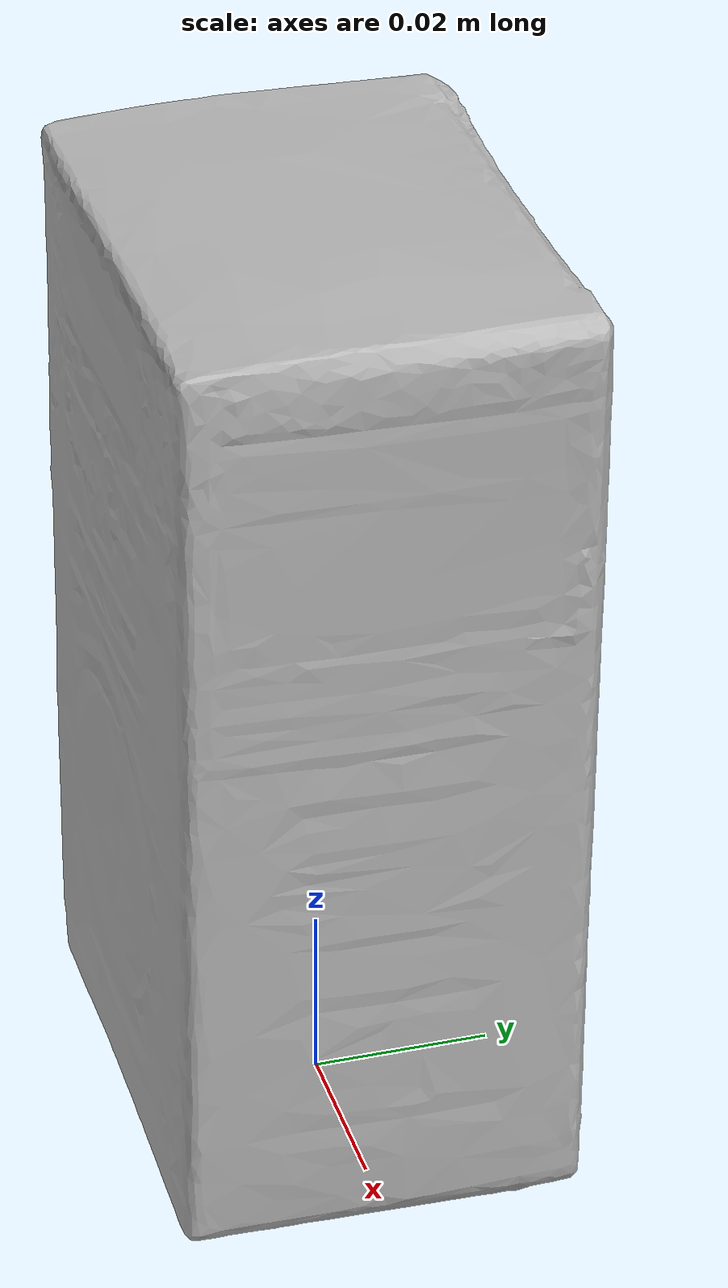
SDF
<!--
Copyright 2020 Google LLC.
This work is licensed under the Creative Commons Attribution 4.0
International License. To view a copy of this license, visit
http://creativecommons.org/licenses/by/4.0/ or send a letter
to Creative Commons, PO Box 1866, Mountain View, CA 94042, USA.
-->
<?xml version="1.0" ?>
<sdf version="1.6">
  <model name="JarroSil_Activated_Silicon">
    <link name="link_0">
      <visual name="visual">
        <geometry>
          <mesh>
            <uri>meshes/model.obj</uri>
          </mesh>
        </geometry>
      </visual>
      <collision name="collision_0">
        <geometry>
          <mesh>
            <uri>meshes/model.obj</uri>
          </mesh>
        </geometry>
      </collision>
    </link>
  </model>
</sdf>
